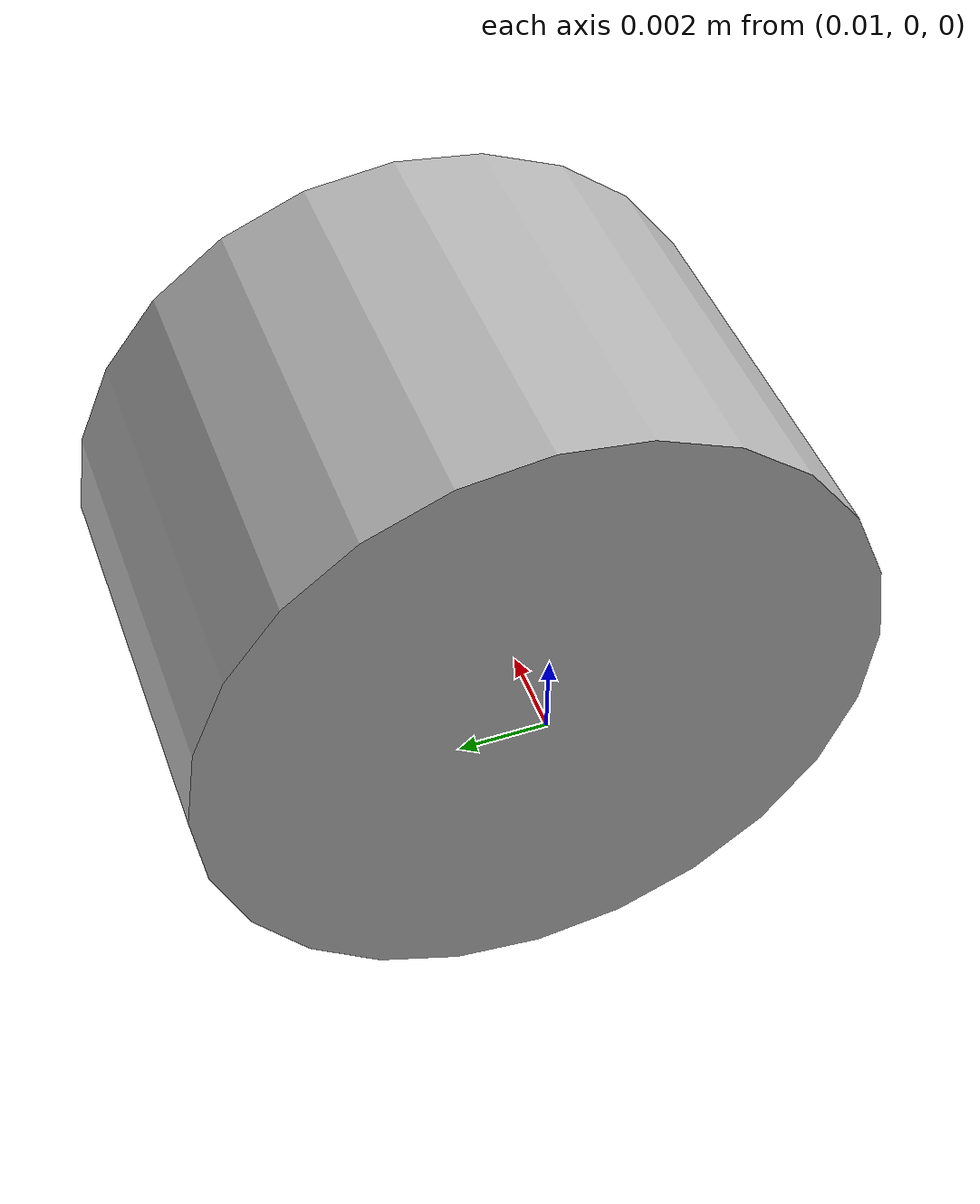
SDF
<?xml version="1.0" ?>
<sdf version="1.6">
    <model name="rangefinder">
    <pose>0 0 0 0 0 0</pose>
    <self_collide>false</self_collide>
    <static>false</static>
    <link name="rangefinder_link">
      <inertial>
        <pose>0 0 0.0435 0 0 0</pose>
        <mass>0.37</mass>
        <inertia>
          <ixx>0.00034437749999999994</ixx>
          <ixy>0</ixy>
          <ixz>0</ixz>
          <iyy>0.00034437749999999994</iyy>
          <iyz>0</iyz>
          <izz>0.00022199999999999998</izz>
        </inertia>
      </inertial>
      <visual name="rangefinder/visual/lens">
        <pose>0.015 0 0 0 1.5707 0</pose>
        <geometry>
          <cylinder>
            <radius>0.008</radius>
            <length>0.01</length>
          </cylinder>
        </geometry>
      </visual>
      <sensor name="rangefinder" type="gpu_lidar">
        <pose>0 0 0 0 0 0</pose>
        <ray>
          <scan>
            <horizontal>
              <samples>10</samples>
              <resolution>1</resolution>
              <min_angle>-0.0872</min_angle>
              <max_angle>0.0872</max_angle>
            </horizontal>
          </scan>
          <range>
            <min>0.1</min>
            <max>30</max>
            <resolution>0.01</resolution>
          </range>
          <noise>
            <type>gaussian</type>
            <mean>0.0</mean>
            <stddev>0.01</stddev>
          </noise>
        </ray>
        <always_on>0</always_on>
        <update_rate>10</update_rate>
        <visualize>true</visualize>
      </sensor>
    </link>
  </model>
</sdf>
